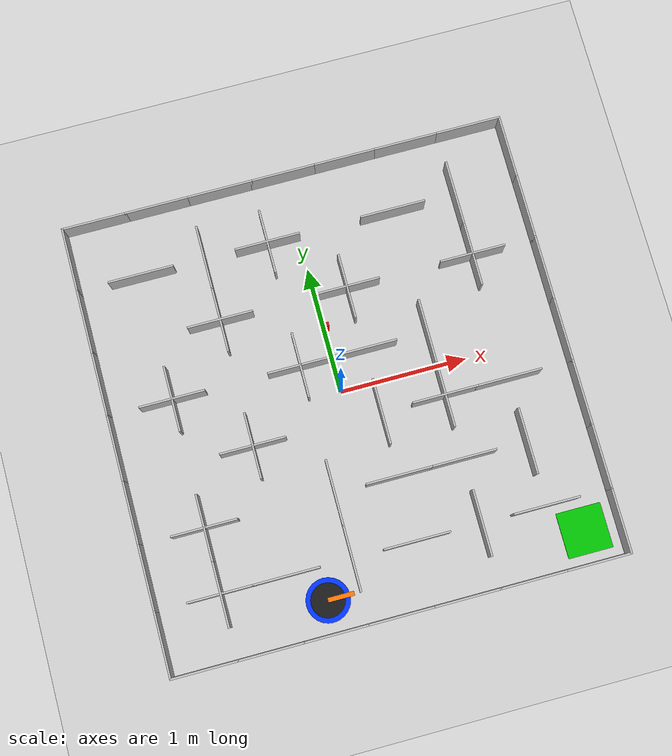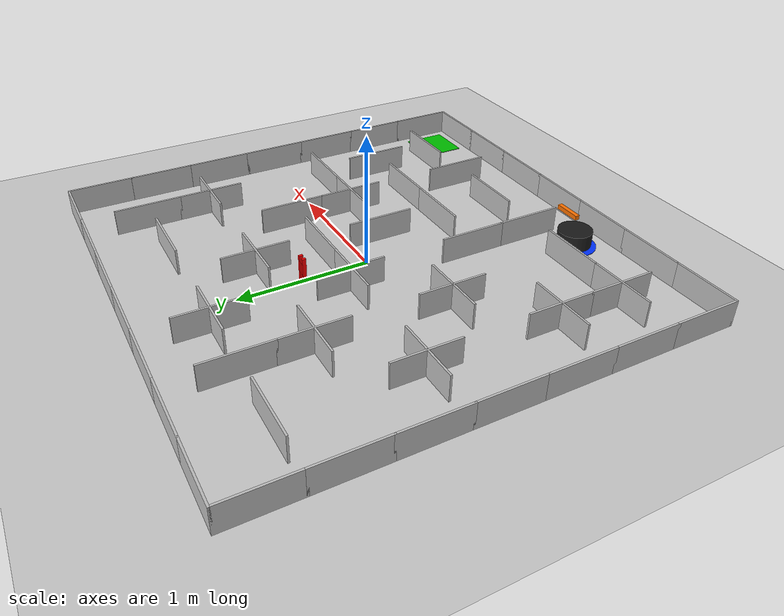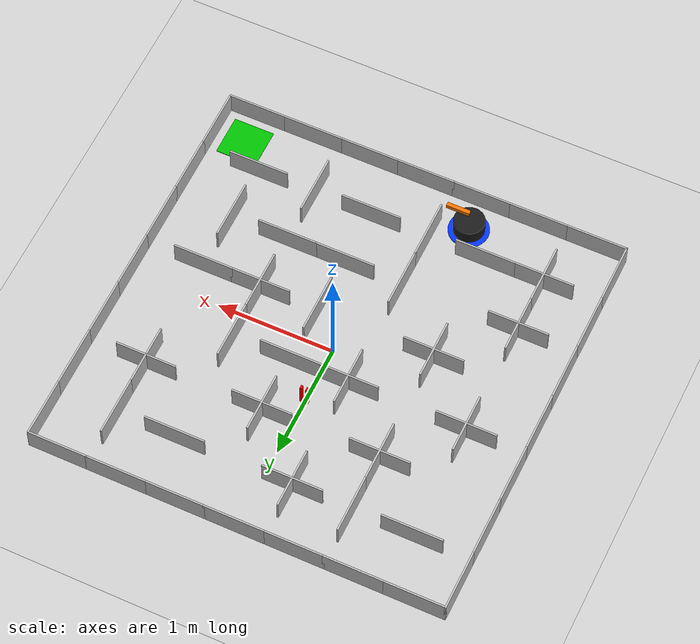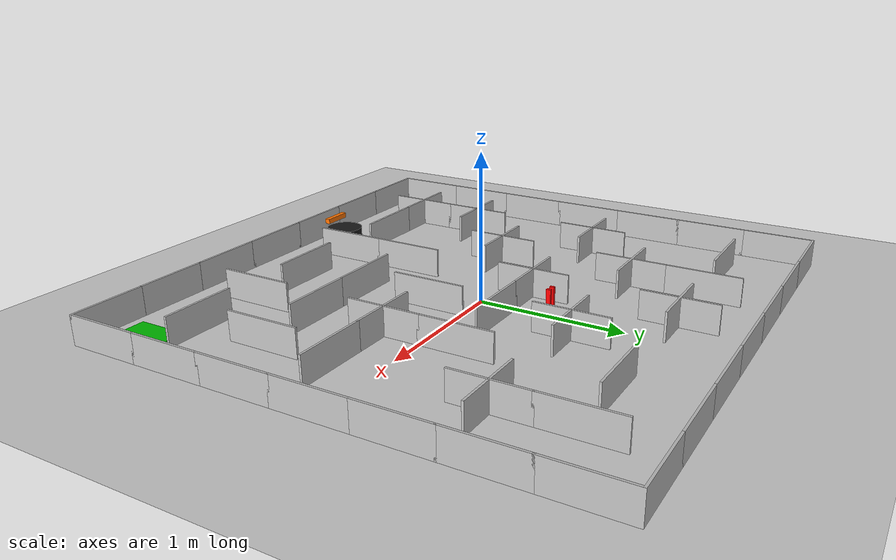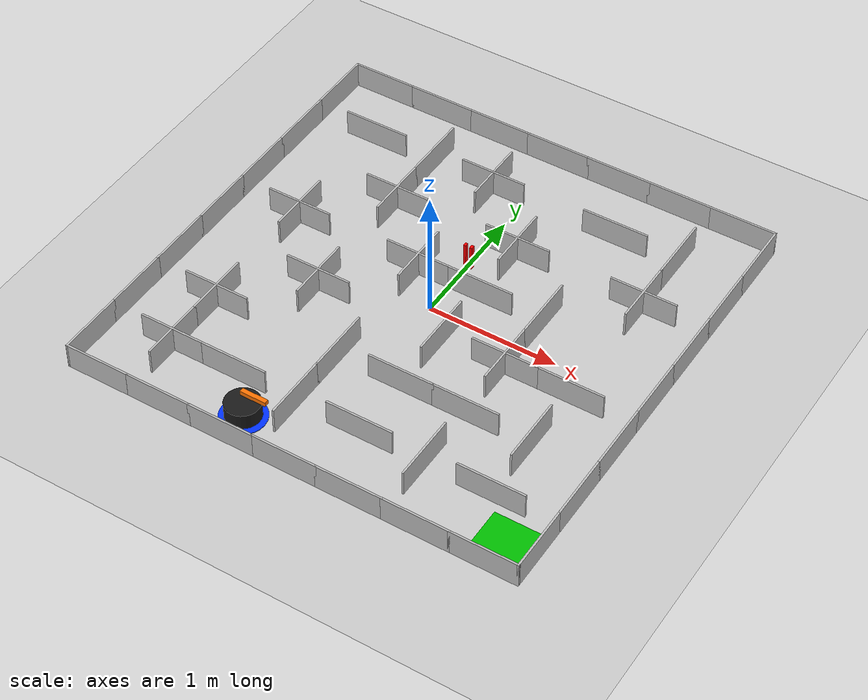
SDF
<?xml version="1.0" ?>
<sdf version="1.6">
  <world name="ai407_phase3_7x7_maze">
    <include><uri>model://sun</uri></include>
    <include><uri>model://ground_plane</uri></include>
    <physics name="default_physics" type="ode"><max_step_size>0.001</max_step_size><real_time_factor>1.0</real_time_factor></physics>
    <!-- Maze dimensions: 3.5m x 3.5m, 7x7 cells, 0.5m cell size, 0.20m wall height, 0.015m wall thickness. -->
    <model name="boundary_south_1">
      <static>true</static>
      <pose>-1.5000 -1.7500 0.1000 0 0 0</pose>
      <link name="link">
        <collision name="collision"><geometry><box><size>0.5150 0.0150 0.2000</size></box></geometry></collision>
        <visual name="visual"><geometry><box><size>0.5150 0.0150 0.2000</size></box></geometry><material><ambient>0.75 0.75 0.75 1</ambient><diffuse>0.75 0.75 0.75 1</diffuse></material></visual>
      </link>
    </model>
    <model name="boundary_north_1">
      <static>true</static>
      <pose>-1.5000 1.7500 0.1000 0 0 0</pose>
      <link name="link">
        <collision name="collision"><geometry><box><size>0.5150 0.0150 0.2000</size></box></geometry></collision>
        <visual name="visual"><geometry><box><size>0.5150 0.0150 0.2000</size></box></geometry><material><ambient>0.75 0.75 0.75 1</ambient><diffuse>0.75 0.75 0.75 1</diffuse></material></visual>
      </link>
    </model>
    <model name="boundary_south_2">
      <static>true</static>
      <pose>-1.0000 -1.7500 0.1000 0 0 0</pose>
      <link name="link">
        <collision name="collision"><geometry><box><size>0.5150 0.0150 0.2000</size></box></geometry></collision>
        <visual name="visual"><geometry><box><size>0.5150 0.0150 0.2000</size></box></geometry><material><ambient>0.75 0.75 0.75 1</ambient><diffuse>0.75 0.75 0.75 1</diffuse></material></visual>
      </link>
    </model>
    <model name="boundary_north_2">
      <static>true</static>
      <pose>-1.0000 1.7500 0.1000 0 0 0</pose>
      <link name="link">
        <collision name="collision"><geometry><box><size>0.5150 0.0150 0.2000</size></box></geometry></collision>
        <visual name="visual"><geometry><box><size>0.5150 0.0150 0.2000</size></box></geometry><material><ambient>0.75 0.75 0.75 1</ambient><diffuse>0.75 0.75 0.75 1</diffuse></material></visual>
      </link>
    </model>
    <model name="boundary_south_3">
      <static>true</static>
      <pose>-0.5000 -1.7500 0.1000 0 0 0</pose>
      <link name="link">
        <collision name="collision"><geometry><box><size>0.5150 0.0150 0.2000</size></box></geometry></collision>
        <visual name="visual"><geometry><box><size>0.5150 0.0150 0.2000</size></box></geometry><material><ambient>0.75 0.75 0.75 1</ambient><diffuse>0.75 0.75 0.75 1</diffuse></material></visual>
      </link>
    </model>
    <model name="boundary_north_3">
      <static>true</static>
      <pose>-0.5000 1.7500 0.1000 0 0 0</pose>
      <link name="link">
        <collision name="collision"><geometry><box><size>0.5150 0.0150 0.2000</size></box></geometry></collision>
        <visual name="visual"><geometry><box><size>0.5150 0.0150 0.2000</size></box></geometry><material><ambient>0.75 0.75 0.75 1</ambient><diffuse>0.75 0.75 0.75 1</diffuse></material></visual>
      </link>
    </model>
    <model name="boundary_south_4">
      <static>true</static>
      <pose>0.0000 -1.7500 0.1000 0 0 0</pose>
      <link name="link">
        <collision name="collision"><geometry><box><size>0.5150 0.0150 0.2000</size></box></geometry></collision>
        <visual name="visual"><geometry><box><size>0.5150 0.0150 0.2000</size></box></geometry><material><ambient>0.75 0.75 0.75 1</ambient><diffuse>0.75 0.75 0.75 1</diffuse></material></visual>
      </link>
    </model>
    <model name="boundary_north_4">
      <static>true</static>
      <pose>0.0000 1.7500 0.1000 0 0 0</pose>
      <link name="link">
        <collision name="collision"><geometry><box><size>0.5150 0.0150 0.2000</size></box></geometry></collision>
        <visual name="visual"><geometry><box><size>0.5150 0.0150 0.2000</size></box></geometry><material><ambient>0.75 0.75 0.75 1</ambient><diffuse>0.75 0.75 0.75 1</diffuse></material></visual>
      </link>
    </model>
    <model name="boundary_south_5">
      <static>true</static>
      <pose>0.5000 -1.7500 0.1000 0 0 0</pose>
      <link name="link">
        <collision name="collision"><geometry><box><size>0.5150 0.0150 0.2000</size></box></geometry></collision>
        <visual name="visual"><geometry><box><size>0.5150 0.0150 0.2000</size></box></geometry><material><ambient>0.75 0.75 0.75 1</ambient><diffuse>0.75 0.75 0.75 1</diffuse></material></visual>
      </link>
    </model>
    <model name="boundary_north_5">
      <static>true</static>
      <pose>0.5000 1.7500 0.1000 0 0 0</pose>
      <link name="link">
        <collision name="collision"><geometry><box><size>0.5150 0.0150 0.2000</size></box></geometry></collision>
        <visual name="visual"><geometry><box><size>0.5150 0.0150 0.2000</size></box></geometry><material><ambient>0.75 0.75 0.75 1</ambient><diffuse>0.75 0.75 0.75 1</diffuse></material></visual>
      </link>
    </model>
    <model name="boundary_south_6">
      <static>true</static>
      <pose>1.0000 -1.7500 0.1000 0 0 0</pose>
      <link name="link">
        <collision name="collision"><geometry><box><size>0.5150 0.0150 0.2000</size></box></geometry></collision>
        <visual name="visual"><geometry><box><size>0.5150 0.0150 0.2000</size></box></geometry><material><ambient>0.75 0.75 0.75 1</ambient><diffuse>0.75 0.75 0.75 1</diffuse></material></visual>
      </link>
    </model>
    <model name="boundary_north_6">
      <static>true</static>
      <pose>1.0000 1.7500 0.1000 0 0 0</pose>
      <link name="link">
        <collision name="collision"><geometry><box><size>0.5150 0.0150 0.2000</size></box></geometry></collision>
        <visual name="visual"><geometry><box><size>0.5150 0.0150 0.2000</size></box></geometry><material><ambient>0.75 0.75 0.75 1</ambient><diffuse>0.75 0.75 0.75 1</diffuse></material></visual>
      </link>
    </model>
    <model name="boundary_south_7">
      <static>true</static>
      <pose>1.5000 -1.7500 0.1000 0 0 0</pose>
      <link name="link">
        <collision name="collision"><geometry><box><size>0.5150 0.0150 0.2000</size></box></geometry></collision>
        <visual name="visual"><geometry><box><size>0.5150 0.0150 0.2000</size></box></geometry><material><ambient>0.75 0.75 0.75 1</ambient><diffuse>0.75 0.75 0.75 1</diffuse></material></visual>
      </link>
    </model>
    <model name="boundary_north_7">
      <static>true</static>
      <pose>1.5000 1.7500 0.1000 0 0 0</pose>
      <link name="link">
        <collision name="collision"><geometry><box><size>0.5150 0.0150 0.2000</size></box></geometry></collision>
        <visual name="visual"><geometry><box><size>0.5150 0.0150 0.2000</size></box></geometry><material><ambient>0.75 0.75 0.75 1</ambient><diffuse>0.75 0.75 0.75 1</diffuse></material></visual>
      </link>
    </model>
    <model name="boundary_west_1">
      <static>true</static>
      <pose>-1.7500 -1.5000 0.1000 0 0 0</pose>
      <link name="link">
        <collision name="collision"><geometry><box><size>0.0150 0.5150 0.2000</size></box></geometry></collision>
        <visual name="visual"><geometry><box><size>0.0150 0.5150 0.2000</size></box></geometry><material><ambient>0.75 0.75 0.75 1</ambient><diffuse>0.75 0.75 0.75 1</diffuse></material></visual>
      </link>
    </model>
    <model name="boundary_east_1">
      <static>true</static>
      <pose>1.7500 -1.5000 0.1000 0 0 0</pose>
      <link name="link">
        <collision name="collision"><geometry><box><size>0.0150 0.5150 0.2000</size></box></geometry></collision>
        <visual name="visual"><geometry><box><size>0.0150 0.5150 0.2000</size></box></geometry><material><ambient>0.75 0.75 0.75 1</ambient><diffuse>0.75 0.75 0.75 1</diffuse></material></visual>
      </link>
    </model>
    <model name="boundary_west_2">
      <static>true</static>
      <pose>-1.7500 -1.0000 0.1000 0 0 0</pose>
      <link name="link">
        <collision name="collision"><geometry><box><size>0.0150 0.5150 0.2000</size></box></geometry></collision>
        <visual name="visual"><geometry><box><size>0.0150 0.5150 0.2000</size></box></geometry><material><ambient>0.75 0.75 0.75 1</ambient><diffuse>0.75 0.75 0.75 1</diffuse></material></visual>
      </link>
    </model>
    <model name="boundary_east_2">
      <static>true</static>
      <pose>1.7500 -1.0000 0.1000 0 0 0</pose>
      <link name="link">
        <collision name="collision"><geometry><box><size>0.0150 0.5150 0.2000</size></box></geometry></collision>
        <visual name="visual"><geometry><box><size>0.0150 0.5150 0.2000</size></box></geometry><material><ambient>0.75 0.75 0.75 1</ambient><diffuse>0.75 0.75 0.75 1</diffuse></material></visual>
      </link>
    </model>
    <model name="boundary_west_3">
      <static>true</static>
      <pose>-1.7500 -0.5000 0.1000 0 0 0</pose>
      <link name="link">
        <collision name="collision"><geometry><box><size>0.0150 0.5150 0.2000</size></box></geometry></collision>
        <visual name="visual"><geometry><box><size>0.0150 0.5150 0.2000</size></box></geometry><material><ambient>0.75 0.75 0.75 1</ambient><diffuse>0.75 0.75 0.75 1</diffuse></material></visual>
      </link>
    </model>
    <model name="boundary_east_3">
      <static>true</static>
      <pose>1.7500 -0.5000 0.1000 0 0 0</pose>
      <link name="link">
        <collision name="collision"><geometry><box><size>0.0150 0.5150 0.2000</size></box></geometry></collision>
        <visual name="visual"><geometry><box><size>0.0150 0.5150 0.2000</size></box></geometry><material><ambient>0.75 0.75 0.75 1</ambient><diffuse>0.75 0.75 0.75 1</diffuse></material></visual>
      </link>
    </model>
    <model name="boundary_west_4">
      <static>true</static>
      <pose>-1.7500 0.0000 0.1000 0 0 0</pose>
      <link name="link">
        <collision name="collision"><geometry><box><size>0.0150 0.5150 0.2000</size></box></geometry></collision>
        <visual name="visual"><geometry><box><size>0.0150 0.5150 0.2000</size></box></geometry><material><ambient>0.75 0.75 0.75 1</ambient><diffuse>0.75 0.75 0.75 1</diffuse></material></visual>
      </link>
    </model>
    <model name="boundary_east_4">
      <static>true</static>
      <pose>1.7500 0.0000 0.1000 0 0 0</pose>
      <link name="link">
        <collision name="collision"><geometry><box><size>0.0150 0.5150 0.2000</size></box></geometry></collision>
        <visual name="visual"><geometry><box><size>0.0150 0.5150 0.2000</size></box></geometry><material><ambient>0.75 0.75 0.75 1</ambient><diffuse>0.75 0.75 0.75 1</diffuse></material></visual>
      </link>
    </model>
    <model name="boundary_west_5">
      <static>true</static>
      <pose>-1.7500 0.5000 0.1000 0 0 0</pose>
      <link name="link">
        <collision name="collision"><geometry><box><size>0.0150 0.5150 0.2000</size></box></geometry></collision>
        <visual name="visual"><geometry><box><size>0.0150 0.5150 0.2000</size></box></geometry><material><ambient>0.75 0.75 0.75 1</ambient><diffuse>0.75 0.75 0.75 1</diffuse></material></visual>
      </link>
    </model>
    <model name="boundary_east_5">
      <static>true</static>
      <pose>1.7500 0.5000 0.1000 0 0 0</pose>
      <link name="link">
        <collision name="collision"><geometry><box><size>0.0150 0.5150 0.2000</size></box></geometry></collision>
        <visual name="visual"><geometry><box><size>0.0150 0.5150 0.2000</size></box></geometry><material><ambient>0.75 0.75 0.75 1</ambient><diffuse>0.75 0.75 0.75 1</diffuse></material></visual>
      </link>
    </model>
    <model name="boundary_west_6">
      <static>true</static>
      <pose>-1.7500 1.0000 0.1000 0 0 0</pose>
      <link name="link">
        <collision name="collision"><geometry><box><size>0.0150 0.5150 0.2000</size></box></geometry></collision>
        <visual name="visual"><geometry><box><size>0.0150 0.5150 0.2000</size></box></geometry><material><ambient>0.75 0.75 0.75 1</ambient><diffuse>0.75 0.75 0.75 1</diffuse></material></visual>
      </link>
    </model>
    <model name="boundary_east_6">
      <static>true</static>
      <pose>1.7500 1.0000 0.1000 0 0 0</pose>
      <link name="link">
        <collision name="collision"><geometry><box><size>0.0150 0.5150 0.2000</size></box></geometry></collision>
        <visual name="visual"><geometry><box><size>0.0150 0.5150 0.2000</size></box></geometry><material><ambient>0.75 0.75 0.75 1</ambient><diffuse>0.75 0.75 0.75 1</diffuse></material></visual>
      </link>
    </model>
    <model name="boundary_west_7">
      <static>true</static>
      <pose>-1.7500 1.5000 0.1000 0 0 0</pose>
      <link name="link">
        <collision name="collision"><geometry><box><size>0.0150 0.5150 0.2000</size></box></geometry></collision>
        <visual name="visual"><geometry><box><size>0.0150 0.5150 0.2000</size></box></geometry><material><ambient>0.75 0.75 0.75 1</ambient><diffuse>0.75 0.75 0.75 1</diffuse></material></visual>
      </link>
    </model>
    <model name="boundary_east_7">
      <static>true</static>
      <pose>1.7500 1.5000 0.1000 0 0 0</pose>
      <link name="link">
        <collision name="collision"><geometry><box><size>0.0150 0.5150 0.2000</size></box></geometry></collision>
        <visual name="visual"><geometry><box><size>0.0150 0.5150 0.2000</size></box></geometry><material><ambient>0.75 0.75 0.75 1</ambient><diffuse>0.75 0.75 0.75 1</diffuse></material></visual>
      </link>
    </model>
    <model name="internal_v_01">
      <static>true</static>
      <pose>-1.2500 -1.2500 0.1000 0 0 0</pose>
      <link name="link">
        <collision name="collision"><geometry><box><size>0.0150 0.5150 0.2000</size></box></geometry></collision>
        <visual name="visual"><geometry><box><size>0.0150 0.5150 0.2000</size></box></geometry><material><ambient>0.75 0.75 0.75 1</ambient><diffuse>0.75 0.75 0.75 1</diffuse></material></visual>
      </link>
    </model>
    <model name="internal_v_02">
      <static>true</static>
      <pose>-1.2500 -0.7500 0.1000 0 0 0</pose>
      <link name="link">
        <collision name="collision"><geometry><box><size>0.0150 0.5150 0.2000</size></box></geometry></collision>
        <visual name="visual"><geometry><box><size>0.0150 0.5150 0.2000</size></box></geometry><material><ambient>0.75 0.75 0.75 1</ambient><diffuse>0.75 0.75 0.75 1</diffuse></material></visual>
      </link>
    </model>
    <model name="internal_v_03">
      <static>true</static>
      <pose>-1.2500 0.2500 0.1000 0 0 0</pose>
      <link name="link">
        <collision name="collision"><geometry><box><size>0.0150 0.5150 0.2000</size></box></geometry></collision>
        <visual name="visual"><geometry><box><size>0.0150 0.5150 0.2000</size></box></geometry><material><ambient>0.75 0.75 0.75 1</ambient><diffuse>0.75 0.75 0.75 1</diffuse></material></visual>
      </link>
    </model>
    <model name="internal_v_04">
      <static>true</static>
      <pose>-0.7500 0.7500 0.1000 0 0 0</pose>
      <link name="link">
        <collision name="collision"><geometry><box><size>0.0150 0.5150 0.2000</size></box></geometry></collision>
        <visual name="visual"><geometry><box><size>0.0150 0.5150 0.2000</size></box></geometry><material><ambient>0.75 0.75 0.75 1</ambient><diffuse>0.75 0.75 0.75 1</diffuse></material></visual>
      </link>
    </model>
    <model name="internal_v_05">
      <static>true</static>
      <pose>-0.7500 1.2500 0.1000 0 0 0</pose>
      <link name="link">
        <collision name="collision"><geometry><box><size>0.0150 0.5150 0.2000</size></box></geometry></collision>
        <visual name="visual"><geometry><box><size>0.0150 0.5150 0.2000</size></box></geometry><material><ambient>0.75 0.75 0.75 1</ambient><diffuse>0.75 0.75 0.75 1</diffuse></material></visual>
      </link>
    </model>
    <model name="internal_v_06">
      <static>true</static>
      <pose>-0.7500 -0.2500 0.1000 0 0 0</pose>
      <link name="link">
        <collision name="collision"><geometry><box><size>0.0150 0.5150 0.2000</size></box></geometry></collision>
        <visual name="visual"><geometry><box><size>0.0150 0.5150 0.2000</size></box></geometry><material><ambient>0.75 0.75 0.75 1</ambient><diffuse>0.75 0.75 0.75 1</diffuse></material></visual>
      </link>
    </model>
    <model name="internal_v_07">
      <static>true</static>
      <pose>-0.2500 -1.2500 0.1000 0 0 0</pose>
      <link name="link">
        <collision name="collision"><geometry><box><size>0.0150 0.5150 0.2000</size></box></geometry></collision>
        <visual name="visual"><geometry><box><size>0.0150 0.5150 0.2000</size></box></geometry><material><ambient>0.75 0.75 0.75 1</ambient><diffuse>0.75 0.75 0.75 1</diffuse></material></visual>
      </link>
    </model>
    <model name="internal_v_08">
      <static>true</static>
      <pose>-0.2500 -0.7500 0.1000 0 0 0</pose>
      <link name="link">
        <collision name="collision"><geometry><box><size>0.0150 0.5150 0.2000</size></box></geometry></collision>
        <visual name="visual"><geometry><box><size>0.0150 0.5150 0.2000</size></box></geometry><material><ambient>0.75 0.75 0.75 1</ambient><diffuse>0.75 0.75 0.75 1</diffuse></material></visual>
      </link>
    </model>
    <model name="internal_v_09">
      <static>true</static>
      <pose>-0.2500 0.2500 0.1000 0 0 0</pose>
      <link name="link">
        <collision name="collision"><geometry><box><size>0.0150 0.5150 0.2000</size></box></geometry></collision>
        <visual name="visual"><geometry><box><size>0.0150 0.5150 0.2000</size></box></geometry><material><ambient>0.75 0.75 0.75 1</ambient><diffuse>0.75 0.75 0.75 1</diffuse></material></visual>
      </link>
    </model>
    <model name="internal_v_10">
      <static>true</static>
      <pose>-0.2500 1.2500 0.1000 0 0 0</pose>
      <link name="link">
        <collision name="collision"><geometry><box><size>0.0150 0.5150 0.2000</size></box></geometry></collision>
        <visual name="visual"><geometry><box><size>0.0150 0.5150 0.2000</size></box></geometry><material><ambient>0.75 0.75 0.75 1</ambient><diffuse>0.75 0.75 0.75 1</diffuse></material></visual>
      </link>
    </model>
    <model name="internal_v_11">
      <static>true</static>
      <pose>0.2500 -0.2500 0.1000 0 0 0</pose>
      <link name="link">
        <collision name="collision"><geometry><box><size>0.0150 0.5150 0.2000</size></box></geometry></collision>
        <visual name="visual"><geometry><box><size>0.0150 0.5150 0.2000</size></box></geometry><material><ambient>0.75 0.75 0.75 1</ambient><diffuse>0.75 0.75 0.75 1</diffuse></material></visual>
      </link>
    </model>
    <model name="internal_v_12">
      <static>true</static>
      <pose>0.2500 0.7500 0.1000 0 0 0</pose>
      <link name="link">
        <collision name="collision"><geometry><box><size>0.0150 0.5150 0.2000</size></box></geometry></collision>
        <visual name="visual"><geometry><box><size>0.0150 0.5150 0.2000</size></box></geometry><material><ambient>0.75 0.75 0.75 1</ambient><diffuse>0.75 0.75 0.75 1</diffuse></material></visual>
      </link>
    </model>
    <model name="internal_v_13">
      <static>true</static>
      <pose>0.7500 -1.2500 0.1000 0 0 0</pose>
      <link name="link">
        <collision name="collision"><geometry><box><size>0.0150 0.5150 0.2000</size></box></geometry></collision>
        <visual name="visual"><geometry><box><size>0.0150 0.5150 0.2000</size></box></geometry><material><ambient>0.75 0.75 0.75 1</ambient><diffuse>0.75 0.75 0.75 1</diffuse></material></visual>
      </link>
    </model>
    <model name="internal_v_14">
      <static>true</static>
      <pose>0.7500 -0.2500 0.1000 0 0 0</pose>
      <link name="link">
        <collision name="collision"><geometry><box><size>0.0150 0.5150 0.2000</size></box></geometry></collision>
        <visual name="visual"><geometry><box><size>0.0150 0.5150 0.2000</size></box></geometry><material><ambient>0.75 0.75 0.75 1</ambient><diffuse>0.75 0.75 0.75 1</diffuse></material></visual>
      </link>
    </model>
    <model name="internal_v_15">
      <static>true</static>
      <pose>0.7500 0.2500 0.1000 0 0 0</pose>
      <link name="link">
        <collision name="collision"><geometry><box><size>0.0150 0.5150 0.2000</size></box></geometry></collision>
        <visual name="visual"><geometry><box><size>0.0150 0.5150 0.2000</size></box></geometry><material><ambient>0.75 0.75 0.75 1</ambient><diffuse>0.75 0.75 0.75 1</diffuse></material></visual>
      </link>
    </model>
    <model name="internal_v_16">
      <static>true</static>
      <pose>1.2500 -0.7500 0.1000 0 0 0</pose>
      <link name="link">
        <collision name="collision"><geometry><box><size>0.0150 0.5150 0.2000</size></box></geometry></collision>
        <visual name="visual"><geometry><box><size>0.0150 0.5150 0.2000</size></box></geometry><material><ambient>0.75 0.75 0.75 1</ambient><diffuse>0.75 0.75 0.75 1</diffuse></material></visual>
      </link>
    </model>
    <model name="internal_v_17">
      <static>true</static>
      <pose>1.2500 0.7500 0.1000 0 0 0</pose>
      <link name="link">
        <collision name="collision"><geometry><box><size>0.0150 0.5150 0.2000</size></box></geometry></collision>
        <visual name="visual"><geometry><box><size>0.0150 0.5150 0.2000</size></box></geometry><material><ambient>0.75 0.75 0.75 1</ambient><diffuse>0.75 0.75 0.75 1</diffuse></material></visual>
      </link>
    </model>
    <model name="internal_v_18">
      <static>true</static>
      <pose>1.2500 1.2500 0.1000 0 0 0</pose>
      <link name="link">
        <collision name="collision"><geometry><box><size>0.0150 0.5150 0.2000</size></box></geometry></collision>
        <visual name="visual"><geometry><box><size>0.0150 0.5150 0.2000</size></box></geometry><material><ambient>0.75 0.75 0.75 1</ambient><diffuse>0.75 0.75 0.75 1</diffuse></material></visual>
      </link>
    </model>
    <model name="internal_h_01">
      <static>true</static>
      <pose>-1.2500 -1.2500 0.1000 0 0 0</pose>
      <link name="link">
        <collision name="collision"><geometry><box><size>0.5150 0.0150 0.2000</size></box></geometry></collision>
        <visual name="visual"><geometry><box><size>0.5150 0.0150 0.2000</size></box></geometry><material><ambient>0.75 0.75 0.75 1</ambient><diffuse>0.75 0.75 0.75 1</diffuse></material></visual>
      </link>
    </model>
    <model name="internal_h_02">
      <static>true</static>
      <pose>-0.7500 -1.2500 0.1000 0 0 0</pose>
      <link name="link">
        <collision name="collision"><geometry><box><size>0.5150 0.0150 0.2000</size></box></geometry></collision>
        <visual name="visual"><geometry><box><size>0.5150 0.0150 0.2000</size></box></geometry><material><ambient>0.75 0.75 0.75 1</ambient><diffuse>0.75 0.75 0.75 1</diffuse></material></visual>
      </link>
    </model>
    <model name="internal_h_03">
      <static>true</static>
      <pose>0.2500 -1.2500 0.1000 0 0 0</pose>
      <link name="link">
        <collision name="collision"><geometry><box><size>0.5150 0.0150 0.2000</size></box></geometry></collision>
        <visual name="visual"><geometry><box><size>0.5150 0.0150 0.2000</size></box></geometry><material><ambient>0.75 0.75 0.75 1</ambient><diffuse>0.75 0.75 0.75 1</diffuse></material></visual>
      </link>
    </model>
    <model name="internal_h_04">
      <static>true</static>
      <pose>1.2500 -1.2500 0.1000 0 0 0</pose>
      <link name="link">
        <collision name="collision"><geometry><box><size>0.5150 0.0150 0.2000</size></box></geometry></collision>
        <visual name="visual"><geometry><box><size>0.5150 0.0150 0.2000</size></box></geometry><material><ambient>0.75 0.75 0.75 1</ambient><diffuse>0.75 0.75 0.75 1</diffuse></material></visual>
      </link>
    </model>
    <model name="internal_h_05">
      <static>true</static>
      <pose>-1.2500 -0.7500 0.1000 0 0 0</pose>
      <link name="link">
        <collision name="collision"><geometry><box><size>0.5150 0.0150 0.2000</size></box></geometry></collision>
        <visual name="visual"><geometry><box><size>0.5150 0.0150 0.2000</size></box></geometry><material><ambient>0.75 0.75 0.75 1</ambient><diffuse>0.75 0.75 0.75 1</diffuse></material></visual>
      </link>
    </model>
    <model name="internal_h_06">
      <static>true</static>
      <pose>0.2500 -0.7500 0.1000 0 0 0</pose>
      <link name="link">
        <collision name="collision"><geometry><box><size>0.5150 0.0150 0.2000</size></box></geometry></collision>
        <visual name="visual"><geometry><box><size>0.5150 0.0150 0.2000</size></box></geometry><material><ambient>0.75 0.75 0.75 1</ambient><diffuse>0.75 0.75 0.75 1</diffuse></material></visual>
      </link>
    </model>
    <model name="internal_h_07">
      <static>true</static>
      <pose>0.7500 -0.7500 0.1000 0 0 0</pose>
      <link name="link">
        <collision name="collision"><geometry><box><size>0.5150 0.0150 0.2000</size></box></geometry></collision>
        <visual name="visual"><geometry><box><size>0.5150 0.0150 0.2000</size></box></geometry><material><ambient>0.75 0.75 0.75 1</ambient><diffuse>0.75 0.75 0.75 1</diffuse></material></visual>
      </link>
    </model>
    <model name="internal_h_08">
      <static>true</static>
      <pose>-0.7500 -0.2500 0.1000 0 0 0</pose>
      <link name="link">
        <collision name="collision"><geometry><box><size>0.5150 0.0150 0.2000</size></box></geometry></collision>
        <visual name="visual"><geometry><box><size>0.5150 0.0150 0.2000</size></box></geometry><material><ambient>0.75 0.75 0.75 1</ambient><diffuse>0.75 0.75 0.75 1</diffuse></material></visual>
      </link>
    </model>
    <model name="internal_h_09">
      <static>true</static>
      <pose>0.7500 -0.2500 0.1000 0 0 0</pose>
      <link name="link">
        <collision name="collision"><geometry><box><size>0.5150 0.0150 0.2000</size></box></geometry></collision>
        <visual name="visual"><geometry><box><size>0.5150 0.0150 0.2000</size></box></geometry><material><ambient>0.75 0.75 0.75 1</ambient><diffuse>0.75 0.75 0.75 1</diffuse></material></visual>
      </link>
    </model>
    <model name="internal_h_10">
      <static>true</static>
      <pose>1.2500 -0.2500 0.1000 0 0 0</pose>
      <link name="link">
        <collision name="collision"><geometry><box><size>0.5150 0.0150 0.2000</size></box></geometry></collision>
        <visual name="visual"><geometry><box><size>0.5150 0.0150 0.2000</size></box></geometry><material><ambient>0.75 0.75 0.75 1</ambient><diffuse>0.75 0.75 0.75 1</diffuse></material></visual>
      </link>
    </model>
    <model name="internal_h_11">
      <static>true</static>
      <pose>-1.2500 0.2500 0.1000 0 0 0</pose>
      <link name="link">
        <collision name="collision"><geometry><box><size>0.5150 0.0150 0.2000</size></box></geometry></collision>
        <visual name="visual"><geometry><box><size>0.5150 0.0150 0.2000</size></box></geometry><material><ambient>0.75 0.75 0.75 1</ambient><diffuse>0.75 0.75 0.75 1</diffuse></material></visual>
      </link>
    </model>
    <model name="internal_h_12">
      <static>true</static>
      <pose>-0.2500 0.2500 0.1000 0 0 0</pose>
      <link name="link">
        <collision name="collision"><geometry><box><size>0.5150 0.0150 0.2000</size></box></geometry></collision>
        <visual name="visual"><geometry><box><size>0.5150 0.0150 0.2000</size></box></geometry><material><ambient>0.75 0.75 0.75 1</ambient><diffuse>0.75 0.75 0.75 1</diffuse></material></visual>
      </link>
    </model>
    <model name="internal_h_13">
      <static>true</static>
      <pose>0.2500 0.2500 0.1000 0 0 0</pose>
      <link name="link">
        <collision name="collision"><geometry><box><size>0.5150 0.0150 0.2000</size></box></geometry></collision>
        <visual name="visual"><geometry><box><size>0.5150 0.0150 0.2000</size></box></geometry><material><ambient>0.75 0.75 0.75 1</ambient><diffuse>0.75 0.75 0.75 1</diffuse></material></visual>
      </link>
    </model>
    <model name="internal_h_14">
      <static>true</static>
      <pose>-0.7500 0.7500 0.1000 0 0 0</pose>
      <link name="link">
        <collision name="collision"><geometry><box><size>0.5150 0.0150 0.2000</size></box></geometry></collision>
        <visual name="visual"><geometry><box><size>0.5150 0.0150 0.2000</size></box></geometry><material><ambient>0.75 0.75 0.75 1</ambient><diffuse>0.75 0.75 0.75 1</diffuse></material></visual>
      </link>
    </model>
    <model name="internal_h_15">
      <static>true</static>
      <pose>0.2500 0.7500 0.1000 0 0 0</pose>
      <link name="link">
        <collision name="collision"><geometry><box><size>0.5150 0.0150 0.2000</size></box></geometry></collision>
        <visual name="visual"><geometry><box><size>0.5150 0.0150 0.2000</size></box></geometry><material><ambient>0.75 0.75 0.75 1</ambient><diffuse>0.75 0.75 0.75 1</diffuse></material></visual>
      </link>
    </model>
    <model name="internal_h_16">
      <static>true</static>
      <pose>1.2500 0.7500 0.1000 0 0 0</pose>
      <link name="link">
        <collision name="collision"><geometry><box><size>0.5150 0.0150 0.2000</size></box></geometry></collision>
        <visual name="visual"><geometry><box><size>0.5150 0.0150 0.2000</size></box></geometry><material><ambient>0.75 0.75 0.75 1</ambient><diffuse>0.75 0.75 0.75 1</diffuse></material></visual>
      </link>
    </model>
    <model name="internal_h_17">
      <static>true</static>
      <pose>-1.2500 1.2500 0.1000 0 0 0</pose>
      <link name="link">
        <collision name="collision"><geometry><box><size>0.5150 0.0150 0.2000</size></box></geometry></collision>
        <visual name="visual"><geometry><box><size>0.5150 0.0150 0.2000</size></box></geometry><material><ambient>0.75 0.75 0.75 1</ambient><diffuse>0.75 0.75 0.75 1</diffuse></material></visual>
      </link>
    </model>
    <model name="internal_h_18">
      <static>true</static>
      <pose>-0.2500 1.2500 0.1000 0 0 0</pose>
      <link name="link">
        <collision name="collision"><geometry><box><size>0.5150 0.0150 0.2000</size></box></geometry></collision>
        <visual name="visual"><geometry><box><size>0.5150 0.0150 0.2000</size></box></geometry><material><ambient>0.75 0.75 0.75 1</ambient><diffuse>0.75 0.75 0.75 1</diffuse></material></visual>
      </link>
    </model>
    <model name="internal_h_19">
      <static>true</static>
      <pose>0.7500 1.2500 0.1000 0 0 0</pose>
      <link name="link">
        <collision name="collision"><geometry><box><size>0.5150 0.0150 0.2000</size></box></geometry></collision>
        <visual name="visual"><geometry><box><size>0.5150 0.0150 0.2000</size></box></geometry><material><ambient>0.75 0.75 0.75 1</ambient><diffuse>0.75 0.75 0.75 1</diffuse></material></visual>
      </link>
    </model>
    <model name="start_cell_marker">
      <static>true</static><pose>-0.50 -1.50 0.003 0 0 0</pose>
      <link name="link"><visual name="visual"><geometry><cylinder><radius>0.17</radius><length>0.006</length></cylinder></geometry><material><ambient>0 0.2 1 1</ambient><diffuse>0 0.2 1 1</diffuse></material></visual></link>
    </model>
    <model name="target_cell_marker">
      <static>true</static><pose>1.50 -1.50 0.003 0 0 0</pose>
      <link name="link"><visual name="visual"><geometry><box><size>0.35 0.35 0.006</size></box></geometry><material><ambient>0 0.75 0 1</ambient><diffuse>0 0.75 0 1</diffuse></material></visual></link>
    </model>
    <model name="turtlebot3_with_arm">
      <static>false</static>
      <pose>-0.50 -1.50 0.075 0 0 0</pose>
      <link name="base">
        <inertial><mass>2.0</mass><inertia><ixx>0.03</ixx><iyy>0.03</iyy><izz>0.03</izz></inertia></inertial>
        <collision name="collision"><geometry><cylinder><radius>0.13</radius><length>0.12</length></cylinder></geometry></collision>
        <visual name="visual"><geometry><cylinder><radius>0.13</radius><length>0.12</length></cylinder></geometry><material><ambient>0.1 0.1 0.1 1</ambient><diffuse>0.1 0.1 0.1 1</diffuse></material></visual>
      </link>
      <link name="arm_visual">
        <pose>0.10 0 0.16 0 0 0</pose>
        <visual name="visual"><geometry><box><size>0.20 0.035 0.035</size></box></geometry><material><ambient>1.0 0.45 0.0 1</ambient><diffuse>1.0 0.45 0.0 1</diffuse></material></visual>
      </link>
    </model>
    <model name="object_1">
      <static>false</static><pose>-0.02 0.50 0.10 0 0 0</pose>
      <link name="link"><inertial><mass>0.02</mass><inertia><ixx>0.0001</ixx><iyy>0.0001</iyy><izz>0.0001</izz></inertia></inertial>
        <collision name="collision"><geometry><box><size>0.02 0.03 0.20</size></box></geometry></collision>
        <visual name="visual"><geometry><box><size>0.02 0.03 0.20</size></box></geometry><material><ambient>1 0 0 1</ambient><diffuse>1 0 0 1</diffuse></material></visual>
      </link>
    </model>
    <model name="object_2">
      <static>false</static><pose>0.03 0.50 0.10 0 0 0</pose>
      <link name="link"><inertial><mass>0.02</mass><inertia><ixx>0.0001</ixx><iyy>0.0001</iyy><izz>0.0001</izz></inertia></inertial>
        <collision name="collision"><geometry><box><size>0.02 0.03 0.20</size></box></geometry></collision>
        <visual name="visual"><geometry><box><size>0.02 0.03 0.20</size></box></geometry><material><ambient>1 0 0 1</ambient><diffuse>1 0 0 1</diffuse></material></visual>
      </link>
    </model>
  </world>
</sdf>
